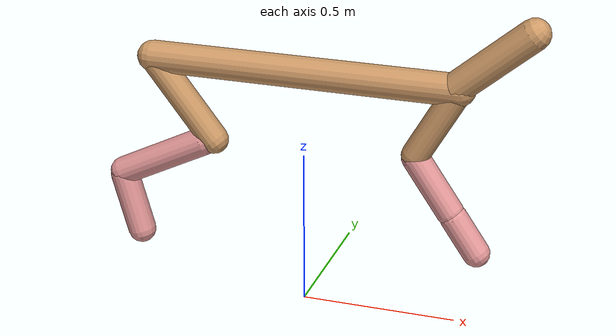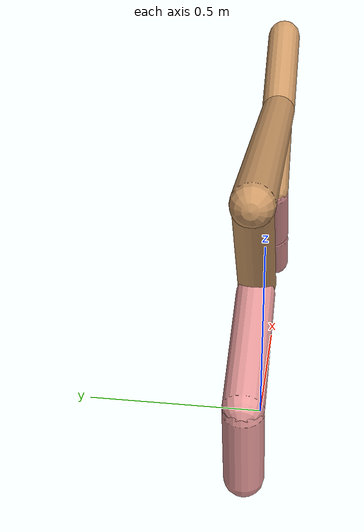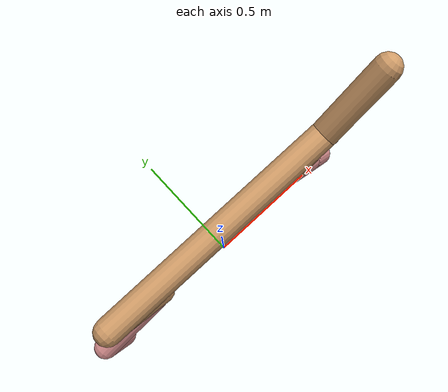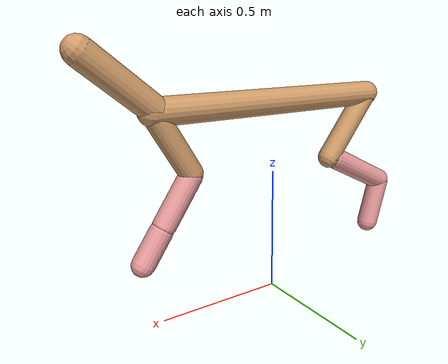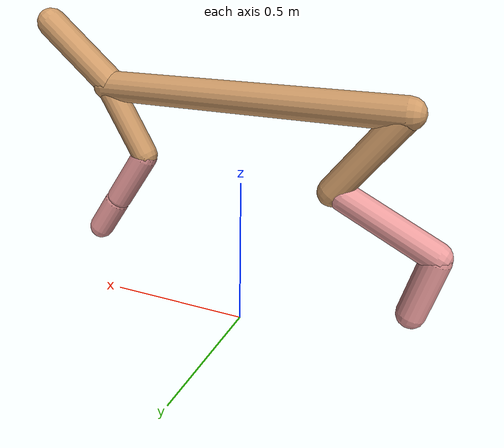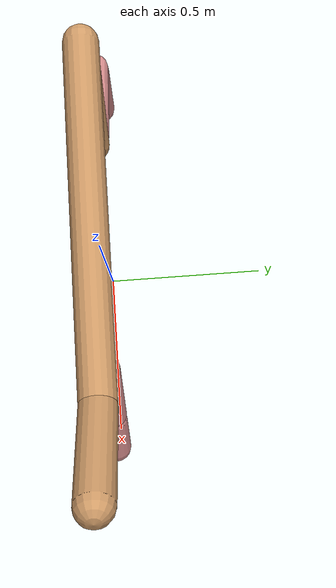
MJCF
<mujoco model="cheetah">
  <compiler angle="radian" coordinate="local" inertiafromgeom="true" settotalmass="14" />
  <default>
    <joint armature=".1" damping=".01" limited="true" solimplimit="0 .8 .03" solreflimit=".02 1" stiffness="8" />
    <geom conaffinity="0" condim="3" contype="1" friction="0.8 .1 .1" rgba="0.8 0.6 .4 1" solimp="0.0 0.8 0.01" solref="0.02 1" />
    <motor ctrllimited="true" ctrlrange="-1 1" />
  </default>
  <size nstack="300000" nuser_geom="1" />
  <option gravity="0 0 -9.81" timestep="0.01" />
  <worldbody>
    <body name="torso" pos="0.0 0.0 0.7773824218294225">
      <joint armature="0" axis="1 0 0" damping="0" limited="false" name="ignorex" pos="0 0 0" stiffness="0" type="slide" />
      <joint armature="0" axis="0 0 1" damping="0" limited="false" name="ignorez" pos="0 0 0" stiffness="0" type="slide" />
      <joint armature="0" axis="0 1 0" damping="0" limited="false" name="ignorey" pos="0 0 0" stiffness="0" type="hinge" />
      <geom fromto="-0.5 0.0 0.0 0.4905161668784838 0.0 0.0" name="torso" size="0.05023066682070024" type="capsule" />
      <geom axisangle="0 1 0 .87" name="head" pos="0.5905161668784839 0.0 0.1" size="0.05000207040333205 0.15" type="capsule" />

      <body name="bthigh" pos="-.5 0 0">
        <joint axis="0 1 0" damping="6" name="bthigh" pos="0 0 0" range="-.52 1.05" stiffness="240" type="hinge" />
        <geom axisangle="0 1 0 -3.8" name="bthigh" pos="0.10579765238733163 0.0 -0.13753694810353112" size="0.045880417681542565 0.15450885691971716" type="capsule" />
        <body name="bshin" pos="0.17159530477466325 0.0 -0.26507389620706223">
          <joint axis="0 1 0" damping="4.5" name="bshin" pos="0 0 0" range="-.785 .785" stiffness="180" type="hinge" />
          <geom axisangle="0 1 0 -2.03" name="bshin" pos="-0.14879825536309252 0.0 -0.07439912768154626" rgba="0.9 0.6 0.6 1" size="0.045880417681542565 0.15983674853763846" type="capsule" />
          <body name="bfoot" pos="-0.29759651072618504 0.0 -0.14879825536309252">
            <joint axis="0 1 0" damping="3" name="bfoot" pos="0 0 0" range="-.4 .785" stiffness="120" type="hinge" />
            <geom axisangle="0 1 0 -.27" name="bfoot" pos="0.03182138245531859 0.0 -0.10288913660553012" rgba="0.9 0.6 0.6 1" size="0.045880417681542565 0.1001643624169201" type="capsule" />
            <inertial mass="10" />
          </body>
        </body>
      </body>
      <body name="fthigh" pos="0.4905161668784839 0.0 0.0">
        <joint axis="0 1 0" damping="4.5" name="fthigh" pos="0 0 0" range="-1.5 0.8" stiffness="180" type="hinge" />
        <geom axisangle="0 1 0 .52" name="fthigh" pos="-0.06766502751483618 0.0 -0.11599719002543343" size="0.04366115788176956 0.1283659322189936" type="capsule" />
        <body name="fshin" pos="-0.13533005502967235 0.0 -0.23199438005086687">
          <joint axis="0 1 0" damping="3" name="fshin" pos="0 0 0" range="-1.2 1.1" stiffness="120" type="hinge" />
          <geom axisangle="0 1 0 -.6" name="fshin" pos="0.06283759767943385 0.0 -0.0870059044792161" rgba="0.9 0.6 0.6 1" size="0.04366115788176956 0.10230668282115277" type="capsule" />
          <body name="ffoot" pos="0.1256751953588677 0.0 -0.1740118089584322">
            <joint axis="0 1 0" damping="1.5" name="ffoot" pos="0 0 0" range="-3.1 -0.3" stiffness="60" type="hinge" />
            <geom axisangle="0 1 0 -.6" name="ffoot" pos="0.04368110140461025 0.0 -0.06794837996272707" rgba="0.9 0.6 0.6 1" size="0.04366115788176956 0.06756101695736505" type="capsule" />
            <inertial mass="10" />
          </body>
        </body>
      </body>
    </body>
  </worldbody>
  <actuator>
    <motor gear="120" joint="bthigh" name="bthigh" />
    <motor gear="90" joint="bshin" name="bshin" />
    <motor gear="60" joint="bfoot" name="bfoot" />
    <motor gear="120" joint="fthigh" name="fthigh" />
    <motor gear="60" joint="fshin" name="fshin" />
    <motor gear="30" joint="ffoot" name="ffoot" />
  </actuator>
</mujoco>
